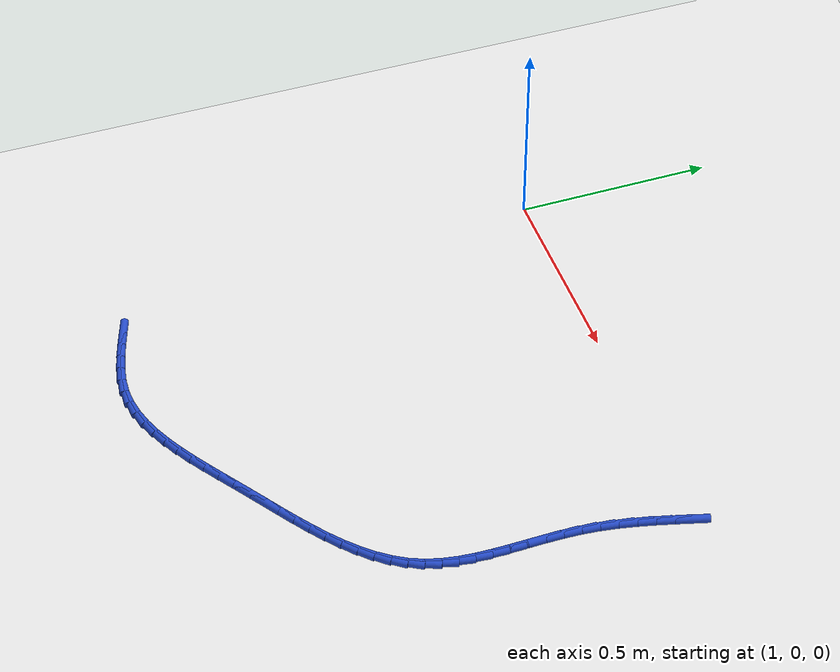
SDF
<sdf version="1.6">
 <world name="default">
  <model name="ground_plane">
   <static>1</static>
   <link name="link">
    <collision name="collision">
     <geometry><plane><normal>0 0 1</normal><size>100 100</size></plane></geometry>
     <surface><friction><ode><mu>100</mu><mu2>50</mu2></ode></friction></surface>
    </collision>
    <visual name="visual">
     <cast_shadows>0</cast_shadows>
     <geometry><plane><normal>0 0 1</normal><size>100 100</size></plane></geometry>
     <material>
      <script><uri>file://media/materials/scripts/gazebo.material</uri><name>Gazebo/WhiteGlow</name></script>
     </material>
    </visual>
   </link>
  </model>
  <model name="line">
   <link name="link_86">
    <pose>2.0818353543640993 -0.009029182162342851 0.01 0 1.57 1.294513173050519</pose>
    <collision name="collision">
     <geometry><cylinder><radius>0.01</radius><length>0.08</length></cylinder></geometry>
    </collision>
    <visual name="visual">
     <material>
      <script><name>Gazebo/Blue</name><uri>file://media/materials/scripts/gazebo.material</uri></script>
     </material>
     <geometry><cylinder><radius>0.01</radius><length>0.08</length></cylinder></geometry>
    </visual>
   </link>
   <link name="link_87">
    <pose>2.0702961470957124 -0.04972691204717015 0.01 0 1.57 1.3075471590848673</pose>
    <collision name="collision">
     <geometry><cylinder><radius>0.01</radius><length>0.08</length></cylinder></geometry>
    </collision>
    <visual name="visual">
     <material>
      <script><name>Gazebo/Blue</name><uri>file://media/materials/scripts/gazebo.material</uri></script>
     </material>
     <geometry><cylinder><radius>0.01</radius><length>0.08</length></cylinder></geometry>
    </visual>
   </link>
   <link name="link_88">
    <pose>2.059227837225944 -0.09079614869563118 0.01 0 1.57 1.331372400259314</pose>
    <collision name="collision">
     <geometry><cylinder><radius>0.01</radius><length>0.08</length></cylinder></geometry>
    </collision>
    <visual name="visual">
     <material>
      <script><name>Gazebo/Blue</name><uri>file://media/materials/scripts/gazebo.material</uri></script>
     </material>
     <geometry><cylinder><radius>0.01</radius><length>0.08</length></cylinder></geometry>
    </visual>
   </link>
   <link name="link_89">
    <pose>2.0491200784696004 -0.13220336440343738 0.01 0 1.57 1.36614496754532</pose>
    <collision name="collision">
     <geometry><cylinder><radius>0.01</radius><length>0.08</length></cylinder></geometry>
    </collision>
    <visual name="visual">
     <material>
      <script><name>Gazebo/Blue</name><uri>file://media/materials/scripts/gazebo.material</uri></script>
     </material>
     <geometry><cylinder><radius>0.01</radius><length>0.08</length></cylinder></geometry>
    </visual>
   </link>
   <link name="link_90">
    <pose>2.0404625245414896 -0.173915031466298 0.01 0 1.57 1.4121298964783668</pose>
    <collision name="collision">
     <geometry><cylinder><radius>0.01</radius><length>0.08</length></cylinder></geometry>
    </collision>
    <visual name="visual">
     <material>
      <script><name>Gazebo/Blue</name><uri>file://media/materials/scripts/gazebo.material</uri></script>
     </material>
     <geometry><cylinder><radius>0.01</radius><length>0.08</length></cylinder></geometry>
    </visual>
   </link>
   <link name="link_91">
    <pose>2.0337448291564177 -0.21589762217992425 0.01 0 1.57 1.4684938406897958</pose>
    <collision name="collision">
     <geometry><cylinder><radius>0.01</radius><length>0.08</length></cylinder></geometry>
    </collision>
    <visual name="visual">
     <material>
      <script><name>Gazebo/Blue</name><uri>file://media/materials/scripts/gazebo.material</uri></script>
     </material>
     <geometry><cylinder><radius>0.01</radius><length>0.08</length></cylinder></geometry>
    </visual>
   </link>
   <link name="link_92">
    <pose>2.029411198756426 -0.25811068761420813 0.01 0 1.57 1.5197802733881698</pose>
    <collision name="collision">
     <geometry><cylinder><radius>0.01</radius><length>0.08</length></cylinder></geometry>
    </collision>
    <visual name="visual">
     <material>
      <script><name>Gazebo/Blue</name><uri>file://media/materials/scripts/gazebo.material</uri></script>
     </material>
     <geometry><cylinder><radius>0.01</radius><length>0.08</length></cylinder></geometry>
    </visual>
   </link>
   <link name="link_93">
    <pose>2.0272511724514697 -0.3004140786773833 0.01 0 1.57 1.5544818635920459</pose>
    <collision name="collision">
     <geometry><cylinder><radius>0.01</radius><length>0.08</length></cylinder></geometry>
    </collision>
    <visual name="visual">
     <material>
      <script><name>Gazebo/Blue</name><uri>file://media/materials/scripts/gazebo.material</uri></script>
     </material>
     <geometry><cylinder><radius>0.01</radius><length>0.08</length></cylinder></geometry>
    </visual>
   </link>
   <link name="link_94">
    <pose>2.026562987784429 -0.34259282530639157 0.01 0 1.57 -1.5691239749182053</pose>
    <collision name="collision">
     <geometry><cylinder><radius>0.01</radius><length>0.08</length></cylinder></geometry>
    </collision>
    <visual name="visual">
     <material>
      <script><name>Gazebo/Blue</name><uri>file://media/materials/scripts/gazebo.material</uri></script>
     </material>
     <geometry><cylinder><radius>0.01</radius><length>0.08</length></cylinder></geometry>
    </visual>
   </link>
   <link name="link_95">
    <pose>2.026632954562984 -0.3844301409474611 0.01 0 1.57 -1.5680242764353451</pose>
    <collision name="collision">
     <geometry><cylinder><radius>0.01</radius><length>0.08</length></cylinder></geometry>
    </collision>
    <visual name="visual">
     <material>
      <script><name>Gazebo/Blue</name><uri>file://media/materials/scripts/gazebo.material</uri></script>
     </material>
     <geometry><cylinder><radius>0.01</radius><length>0.08</length></cylinder></geometry>
    </visual>
   </link>
   <link name="link_96">
    <pose>2.026747382594811 -0.42570923904682206 0.01 0 1.57 1.5570997801188886</pose>
    <collision name="collision">
     <geometry><cylinder><radius>0.01</radius><length>0.08</length></cylinder></geometry>
    </collision>
    <visual name="visual">
     <material>
      <script><name>Gazebo/Blue</name><uri>file://media/materials/scripts/gazebo.material</uri></script>
     </material>
     <geometry><cylinder><radius>0.01</radius><length>0.08</length></cylinder></geometry>
    </visual>
   </link>
   <link name="link_97">
    <pose>2.0261925816875856 -0.46621333305070384 0.01 0 1.57 1.521794656474005</pose>
    <collision name="collision">
     <geometry><cylinder><radius>0.01</radius><length>0.08</length></cylinder></geometry>
    </collision>
    <visual name="visual">
     <material>
      <script><name>Gazebo/Blue</name><uri>file://media/materials/scripts/gazebo.material</uri></script>
     </material>
     <geometry><cylinder><radius>0.01</radius><length>0.08</length></cylinder></geometry>
    </visual>
   </link>
   <link name="link_98">
    <pose>2.0242548616489886 -0.5057256364053361 0.01 0 1.57 1.4658584976354625</pose>
    <collision name="collision">
     <geometry><cylinder><radius>0.01</radius><length>0.08</length></cylinder></geometry>
    </collision>
    <visual name="visual">
     <material>
      <script><name>Gazebo/Blue</name><uri>file://media/materials/scripts/gazebo.material</uri></script>
     </material>
     <geometry><cylinder><radius>0.01</radius><length>0.08</length></cylinder></geometry>
    </visual>
   </link>
   <link name="link_99">
    <pose>2.020220532286696 -0.5440293625569492 0.01 0 1.57 1.3872843520400295</pose>
    <collision name="collision">
     <geometry><cylinder><radius>0.01</radius><length>0.08</length></cylinder></geometry>
    </collision>
    <visual name="visual">
     <material>
      <script><name>Gazebo/Blue</name><uri>file://media/materials/scripts/gazebo.material</uri></script>
     </material>
     <geometry><cylinder><radius>0.01</radius><length>0.08</length></cylinder></geometry>
    </visual>
   </link>
   <link name="link_100">
    <pose>2.0133759034083867 -0.5809077249517707 0.01 0 1.57 1.2846135884513696</pose>
    <collision name="collision">
     <geometry><cylinder><radius>0.01</radius><length>0.08</length></cylinder></geometry>
    </collision>
    <visual name="visual">
     <material>
      <script><name>Gazebo/Blue</name><uri>file://media/materials/scripts/gazebo.material</uri></script>
     </material>
     <geometry><cylinder><radius>0.01</radius><length>0.08</length></cylinder></geometry>
    </visual>
   </link>
   <link name="link_101">
    <pose>2.003007284821738 -0.6161439370360313 0.01 0 1.57 1.161258187890174</pose>
    <collision name="collision">
     <geometry><cylinder><radius>0.01</radius><length>0.08</length></cylinder></geometry>
    </collision>
    <visual name="visual">
     <material>
      <script><name>Gazebo/Blue</name><uri>file://media/materials/scripts/gazebo.material</uri></script>
     </material>
     <geometry><cylinder><radius>0.01</radius><length>0.08</length></cylinder></geometry>
    </visual>
   </link>
   <link name="link_102">
    <pose>1.9885026012502036 -0.6495585376961125 0.01 0 1.57 1.0413930862206309</pose>
    <collision name="collision">
     <geometry><cylinder><radius>0.01</radius><length>0.08</length></cylinder></geometry>
    </collision>
    <visual name="visual">
     <material>
      <script><name>Gazebo/Blue</name><uri>file://media/materials/scripts/gazebo.material</uri></script>
     </material>
     <geometry><cylinder><radius>0.01</radius><length>0.08</length></cylinder></geometry>
    </visual>
   </link>
   <link name="link_103">
    <pose>1.9699677440264909 -0.681235791074673 0.01 0 1.57 0.9369956195725248</pose>
    <collision name="collision">
     <geometry><cylinder><radius>0.01</radius><length>0.08</length></cylinder></geometry>
    </collision>
    <visual name="visual">
     <material>
      <script><name>Gazebo/Blue</name><uri>file://media/materials/scripts/gazebo.material</uri></script>
     </material>
     <geometry><cylinder><radius>0.01</radius><length>0.08</length></cylinder></geometry>
    </visual>
   </link>
   <link name="link_104">
    <pose>1.9478179137188587 -0.7113735775415948 0.01 0 1.57 0.8489977469094298</pose>
    <collision name="collision">
     <geometry><cylinder><radius>0.01</radius><length>0.08</length></cylinder></geometry>
    </collision>
    <visual name="visual">
     <material>
      <script><name>Gazebo/Blue</name><uri>file://media/materials/scripts/gazebo.material</uri></script>
     </material>
     <geometry><cylinder><radius>0.01</radius><length>0.08</length></cylinder></geometry>
    </visual>
   </link>
   <link name="link_105">
    <pose>1.922469521460072 -0.7401702221342822 0.01 0 1.57 0.7768526925051209</pose>
    <collision name="collision">
     <geometry><cylinder><radius>0.01</radius><length>0.08</length></cylinder></geometry>
    </collision>
    <visual name="visual">
     <material>
      <script><name>Gazebo/Blue</name><uri>file://media/materials/scripts/gazebo.material</uri></script>
     </material>
     <geometry><cylinder><radius>0.01</radius><length>0.08</length></cylinder></geometry>
    </visual>
   </link>
   <link name="link_106">
    <pose>1.894338978382898 -0.7678240498901421 0.01 0 1.57 0.7192957497035319</pose>
    <collision name="collision">
     <geometry><cylinder><radius>0.01</radius><length>0.08</length></cylinder></geometry>
    </collision>
    <visual name="visual">
     <material>
      <script><name>Gazebo/Blue</name><uri>file://media/materials/scripts/gazebo.material</uri></script>
     </material>
     <geometry><cylinder><radius>0.01</radius><length>0.08</length></cylinder></geometry>
    </visual>
   </link>
   <link name="link_107">
    <pose>1.8638426956201024 -0.7945333858465803 0.01 0 1.57 0.6748664707009618</pose>
    <collision name="collision">
     <geometry><cylinder><radius>0.01</radius><length>0.08</length></cylinder></geometry>
    </collision>
    <visual name="visual">
     <material>
      <script><name>Gazebo/Blue</name><uri>file://media/materials/scripts/gazebo.material</uri></script>
     </material>
     <geometry><cylinder><radius>0.01</radius><length>0.08</length></cylinder></geometry>
    </visual>
   </link>
   <link name="link_108">
    <pose>1.83139708430445 -0.8204965550410025 0.01 0 1.57 0.6422083295260905</pose>
    <collision name="collision">
     <geometry><cylinder><radius>0.01</radius><length>0.08</length></cylinder></geometry>
    </collision>
    <visual name="visual">
     <material>
      <script><name>Gazebo/Blue</name><uri>file://media/materials/scripts/gazebo.material</uri></script>
     </material>
     <geometry><cylinder><radius>0.01</radius><length>0.08</length></cylinder></geometry>
    </visual>
   </link>
   <link name="link_109">
    <pose>1.7974185555687072 -0.8459118825108145 0.01 0 1.57 0.6202104028025504</pose>
    <collision name="collision">
     <geometry><cylinder><radius>0.01</radius><length>0.08</length></cylinder></geometry>
    </collision>
    <visual name="visual">
     <material>
      <script><name>Gazebo/Blue</name><uri>file://media/materials/scripts/gazebo.material</uri></script>
     </material>
     <geometry><cylinder><radius>0.01</radius><length>0.08</length></cylinder></geometry>
    </visual>
   </link>
   <link name="link_110">
    <pose>1.7623235205456398 -0.870977693293423 0.01 0 1.57 0.6080590970020212</pose>
    <collision name="collision">
     <geometry><cylinder><radius>0.01</radius><length>0.08</length></cylinder></geometry>
    </collision>
    <visual name="visual">
     <material>
      <script><name>Gazebo/Blue</name><uri>file://media/materials/scripts/gazebo.material</uri></script>
     </material>
     <geometry><cylinder><radius>0.01</radius><length>0.08</length></cylinder></geometry>
    </visual>
   </link>
   <link name="link_111">
    <pose>1.726528390368014 -0.8958923124262326 0.01 0 1.57 0.6052469111588055</pose>
    <collision name="collision">
     <geometry><cylinder><radius>0.01</radius><length>0.08</length></cylinder></geometry>
    </collision>
    <visual name="visual">
     <material>
      <script><name>Gazebo/Blue</name><uri>file://media/materials/scripts/gazebo.material</uri></script>
     </material>
     <geometry><cylinder><radius>0.01</radius><length>0.08</length></cylinder></geometry>
    </visual>
   </link>
   <link name="link_112">
    <pose>1.690449576168596 -0.9208540649466497 0.01 0 1.57 0.6111290226041617</pose>
    <collision name="collision">
     <geometry><cylinder><radius>0.01</radius><length>0.08</length></cylinder></geometry>
    </collision>
    <visual name="visual">
     <material>
      <script><name>Gazebo/Blue</name><uri>file://media/materials/scripts/gazebo.material</uri></script>
     </material>
     <geometry><cylinder><radius>0.01</radius><length>0.08</length></cylinder></geometry>
    </visual>
   </link>
   <link name="link_113">
    <pose>1.654492271772568 -0.9460457785209367 0.01 0 1.57 0.6161493194666318</pose>
    <collision name="collision">
     <geometry><cylinder><radius>0.01</radius><length>0.08</length></cylinder></geometry>
    </collision>
    <visual name="visual">
     <material>
      <script><name>Gazebo/Blue</name><uri>file://media/materials/scripts/gazebo.material</uri></script>
     </material>
     <geometry><cylinder><radius>0.01</radius><length>0.08</length></cylinder></geometry>
    </visual>
   </link>
   <link name="link_114">
    <pose>1.6188148951238175 -0.9713093453998439 0.01 0 1.57 0.6108955112135767</pose>
    <collision name="collision">
     <geometry><cylinder><radius>0.01</radius><length>0.08</length></cylinder></geometry>
    </collision>
    <visual name="visual">
     <material>
      <script><name>Gazebo/Blue</name><uri>file://media/materials/scripts/gazebo.material</uri></script>
     </material>
     <geometry><cylinder><radius>0.01</radius><length>0.08</length></cylinder></geometry>
    </visual>
   </link>
   <link name="link_115">
    <pose>1.5833351663693314 -0.9961541196502133 0.01 0 1.57 0.5946002575176403</pose>
    <collision name="collision">
     <geometry><cylinder><radius>0.01</radius><length>0.08</length></cylinder></geometry>
    </collision>
    <visual name="visual">
     <material>
      <script><name>Gazebo/Blue</name><uri>file://media/materials/scripts/gazebo.material</uri></script>
     </material>
     <geometry><cylinder><radius>0.01</radius><length>0.08</length></cylinder></geometry>
    </visual>
   </link>
   <link name="link_116">
    <pose>1.5479608042023991 -1.0200756377414975 0.01 0 1.57 0.5665514167610602</pose>
    <collision name="collision">
     <geometry><cylinder><radius>0.01</radius><length>0.08</length></cylinder></geometry>
    </collision>
    <visual name="visual">
     <material>
      <script><name>Gazebo/Blue</name><uri>file://media/materials/scripts/gazebo.material</uri></script>
     </material>
     <geometry><cylinder><radius>0.01</radius><length>0.08</length></cylinder></geometry>
    </visual>
   </link>
   <link name="link_117">
    <pose>1.512599527316307 -1.0425694361431495 0.01 0 1.57 0.5257134406678936</pose>
    <collision name="collision">
     <geometry><cylinder><radius>0.01</radius><length>0.08</length></cylinder></geometry>
    </collision>
    <visual name="visual">
     <material>
      <script><name>Gazebo/Blue</name><uri>file://media/materials/scripts/gazebo.material</uri></script>
     </material>
     <geometry><cylinder><radius>0.01</radius><length>0.08</length></cylinder></geometry>
    </visual>
   </link>
   <link name="link_118">
    <pose>1.4771590544043434 -1.063131051324622 0.01 0 1.57 0.4707878871301432</pose>
    <collision name="collision">
     <geometry><cylinder><radius>0.01</radius><length>0.08</length></cylinder></geometry>
    </collision>
    <visual name="visual">
     <material>
      <script><name>Gazebo/Blue</name><uri>file://media/materials/scripts/gazebo.material</uri></script>
     </material>
     <geometry><cylinder><radius>0.01</radius><length>0.08</length></cylinder></geometry>
    </visual>
   </link>
   <link name="link_119">
    <pose>1.4415471041597954 -1.0812560197553684 0.01 0 1.57 0.40037478631898454</pose>
    <collision name="collision">
     <geometry><cylinder><radius>0.01</radius><length>0.08</length></cylinder></geometry>
    </collision>
    <visual name="visual">
     <material>
      <script><name>Gazebo/Blue</name><uri>file://media/materials/scripts/gazebo.material</uri></script>
     </material>
     <geometry><cylinder><radius>0.01</radius><length>0.08</length></cylinder></geometry>
    </visual>
   </link>
   <link name="link_120">
    <pose>1.4056713952759516 -1.0964398779048417 0.01 0 1.57 0.3133071280147204</pose>
    <collision name="collision">
     <geometry><cylinder><radius>0.01</radius><length>0.08</length></cylinder></geometry>
    </collision>
    <visual name="visual">
     <material>
      <script><name>Gazebo/Blue</name><uri>file://media/materials/scripts/gazebo.material</uri></script>
     </material>
     <geometry><cylinder><radius>0.01</radius><length>0.08</length></cylinder></geometry>
    </visual>
   </link>
   <link name="link_121">
    <pose>1.3694396464460978 -1.1081781622424947 0.01 0 1.57 0.20922189000996447</pose>
    <collision name="collision">
     <geometry><cylinder><radius>0.01</radius><length>0.08</length></cylinder></geometry>
    </collision>
    <visual name="visual">
     <material>
      <script><name>Gazebo/Blue</name><uri>file://media/materials/scripts/gazebo.material</uri></script>
     </material>
     <geometry><cylinder><radius>0.01</radius><length>0.08</length></cylinder></geometry>
    </visual>
   </link>
   <link name="link_122">
    <pose>1.3327595763635245 -1.1159664092377801 0.01 0 1.57 0.08932869365753987</pose>
    <collision name="collision">
     <geometry><cylinder><radius>0.01</radius><length>0.08</length></cylinder></geometry>
    </collision>
    <visual name="visual">
     <material>
      <script><name>Gazebo/Blue</name><uri>file://media/materials/scripts/gazebo.material</uri></script>
     </material>
     <geometry><cylinder><radius>0.01</radius><length>0.08</length></cylinder></geometry>
    </visual>
   </link>
   <link name="link_123">
    <pose>1.295538903721518 -1.1193001553601516 0.01 0 1.57 -0.03867317233711738</pose>
    <collision name="collision">
     <geometry><cylinder><radius>0.01</radius><length>0.08</length></cylinder></geometry>
    </collision>
    <visual name="visual">
     <material>
      <script><name>Gazebo/Blue</name><uri>file://media/materials/scripts/gazebo.material</uri></script>
     </material>
     <geometry><cylinder><radius>0.01</radius><length>0.08</length></cylinder></geometry>
    </visual>
   </link>
   <link name="link_124">
    <pose>1.2577088756176096 -1.1178364183623597 0.01 0 1.57 -0.14647376985625307</pose>
    <collision name="collision">
     <geometry><cylinder><radius>0.01</radius><length>0.08</length></cylinder></geometry>
    </collision>
    <visual name="visual">
     <material>
      <script><name>Gazebo/Blue</name><uri>file://media/materials/scripts/gazebo.material</uri></script>
     </material>
     <geometry><cylinder><radius>0.01</radius><length>0.08</length></cylinder></geometry>
    </visual>
   </link>
   <link name="link_125">
    <pose>1.219338190358799 -1.1121755777935989 0.01 0 1.57 -0.22591222825784849</pose>
    <collision name="collision">
     <geometry><cylinder><radius>0.01</radius><length>0.08</length></cylinder></geometry>
    </collision>
    <visual name="visual">
     <material>
      <script><name>Gazebo/Blue</name><uri>file://media/materials/scripts/gazebo.material</uri></script>
     </material>
     <geometry><cylinder><radius>0.01</radius><length>0.08</length></cylinder></geometry>
    </visual>
   </link>
   <link name="link_126">
    <pose>1.1805453159189363 -1.103259594790552 0.01 0 1.57 -0.27967670626991664</pose>
    <collision name="collision">
     <geometry><cylinder><radius>0.01</radius><length>0.08</length></cylinder></geometry>
    </collision>
    <visual name="visual">
     <material>
      <script><name>Gazebo/Blue</name><uri>file://media/materials/scripts/gazebo.material</uri></script>
     </material>
     <geometry><cylinder><radius>0.01</radius><length>0.08</length></cylinder></geometry>
    </visual>
   </link>
   <link name="link_127">
    <pose>1.141448789106108 -1.0920309029163437 0.01 0 1.57 -0.31036882798256854</pose>
    <collision name="collision">
     <geometry><cylinder><radius>0.01</radius><length>0.08</length></cylinder></geometry>
    </collision>
    <visual name="visual">
     <material>
      <script><name>Gazebo/Blue</name><uri>file://media/materials/scripts/gazebo.material</uri></script>
     </material>
     <geometry><cylinder><radius>0.01</radius><length>0.08</length></cylinder></geometry>
    </visual>
   </link>
   <link name="link_128">
    <pose>1.1021671467283995 -1.0794319357340996 0.01 0 1.57 -0.3197074402417798</pose>
    <collision name="collision">
     <geometry><cylinder><radius>0.01</radius><length>0.08</length></cylinder></geometry>
    </collision>
    <visual name="visual">
     <material>
      <script><name>Gazebo/Blue</name><uri>file://media/materials/scripts/gazebo.material</uri></script>
     </material>
     <geometry><cylinder><radius>0.01</radius><length>0.08</length></cylinder></geometry>
    </visual>
   </link>
  </model>
 </world>
</sdf>
